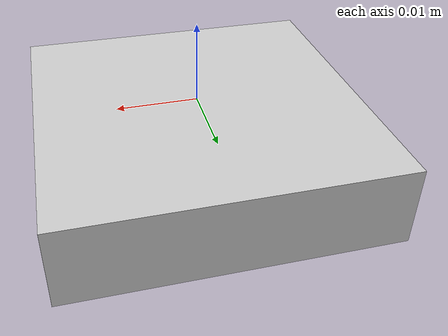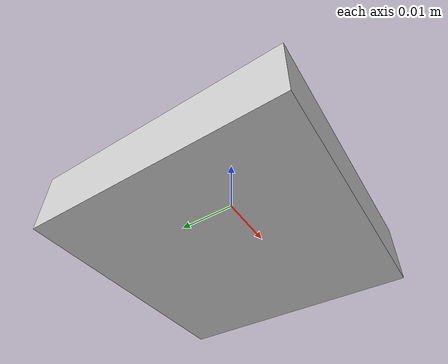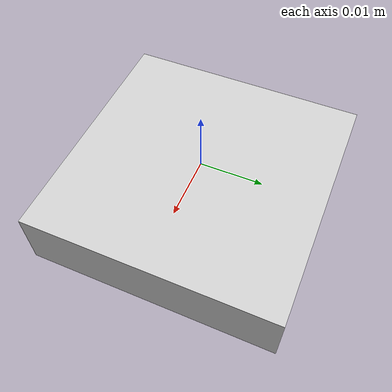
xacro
<?xml version="1.0"?>
<robot xmlns:xacro="http://www.ros.org/wiki/xacro" name="apriltag">
    <xacro:include filename="$(find hippo_sim)/models/common/urdf/common.xacro" />

    <xacro:arg name="size_x" default="0.04" />
    <xacro:arg name="size_y" default="0.04" />
    <xacro:arg name="size_z" default="0.01" />
    <xacro:arg name="tag_id" default="0" />

    <xacro:property name="z" value="$(arg size_z)" />
    <xacro:property name="xyz" default="0 0 ${-0.5 * z}" />
    <xacro:property name="id" value="$(arg tag_id)" />
    <xacro:property name="link" value="base_link" />
    <xacro:property name="size" value="$(arg size_x) $(arg size_y) $(arg size_z)" />
    <gazebo>
        <static>true</static>
    </gazebo>
    <link name="${link}">
        <xacro:zero_inertia />
        <visual>
            <origin xyz="${xyz}" rpy="0 0 0" />
            <geometry>
                <mesh filename="$(find hippo_sim)/models/apriltag/meshes/cube.dae" scale="${size}" />
            </geometry>
        </visual>
    </link>
    <gazebo reference="${link}">
        <visual>
            <material>
                <ambient>1 1 1 1</ambient>
                <diffuse>1 1 1 1</diffuse>
                <specular>1 1 1 1</specular>
                <pbr>
                    <metal>
                        <metalness>1</metalness>
                        <roughness>0.5</roughness>
                        <environment_map>$(find hippo_sim)/models/common/textures/env_map.dds</environment_map>
                        <albedo_map>$(find hippo_sim)/models/apriltag/textures/tag36h11/tag36_11_${'%05d' % id}.png</albedo_map>
                    </metal>
                </pbr>
            </material>
        </visual>
    </gazebo>
</robot>

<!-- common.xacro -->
<robot xmlns:xacro="http://www.ros.org/wiki/xacro">
    <xacro:macro name="zero_inertia">
        <inertial>
            <mass value="1e-5" />
            <inertia ixx="1e-5" ixy="0.0" ixz="0.0" iyy="1e-5" iyz="0.0" izz="1e-5" />
        </inertial>
    </xacro:macro>
    <xacro:arg name="vehicle_name" default="this_shoud_be_replaced_by_your_vehicle_name" />
</robot>
